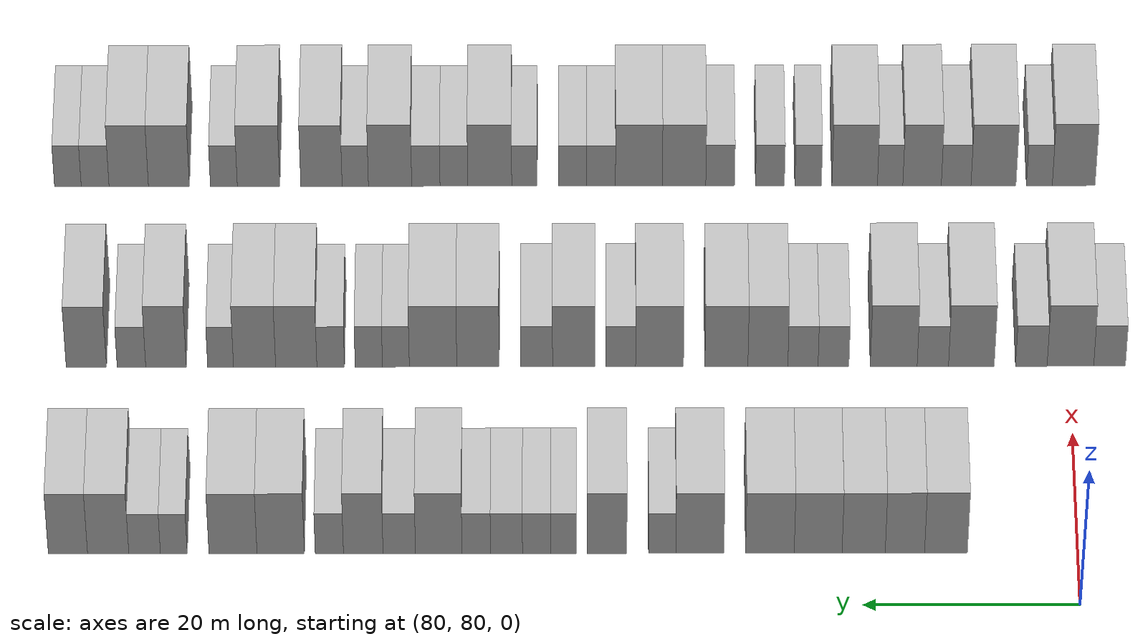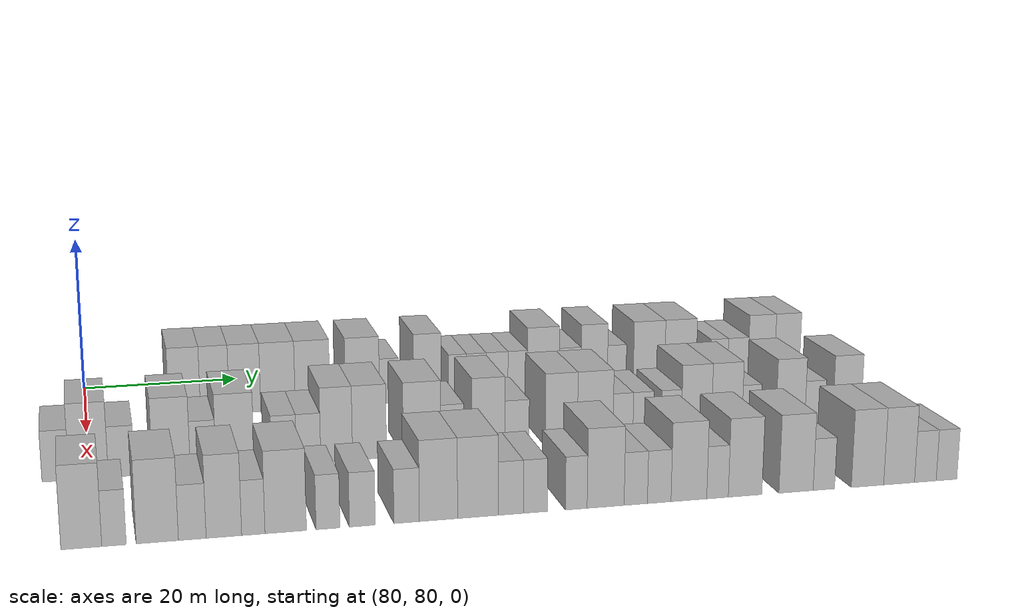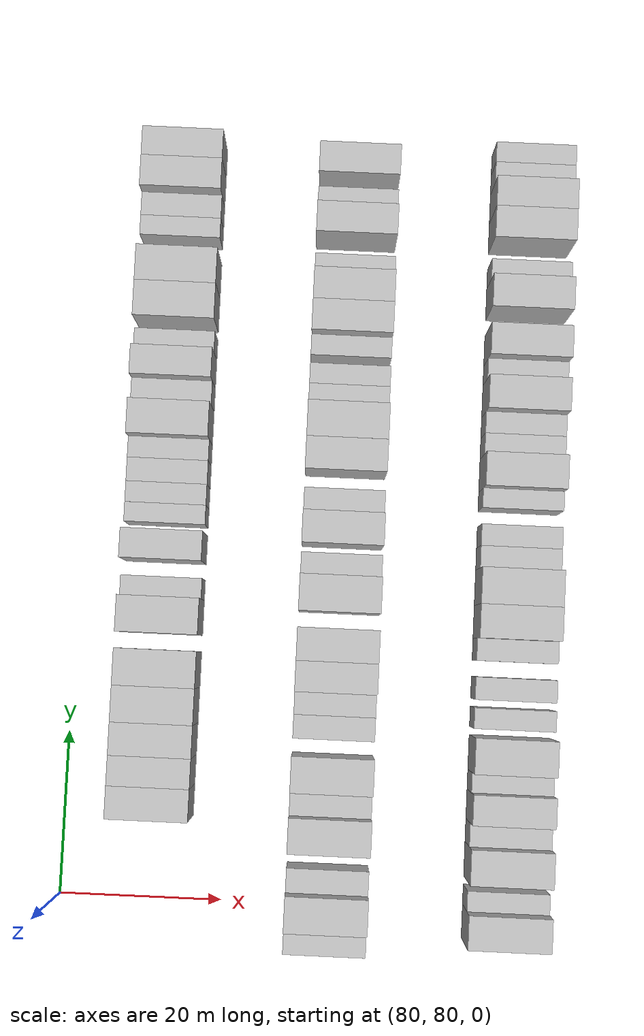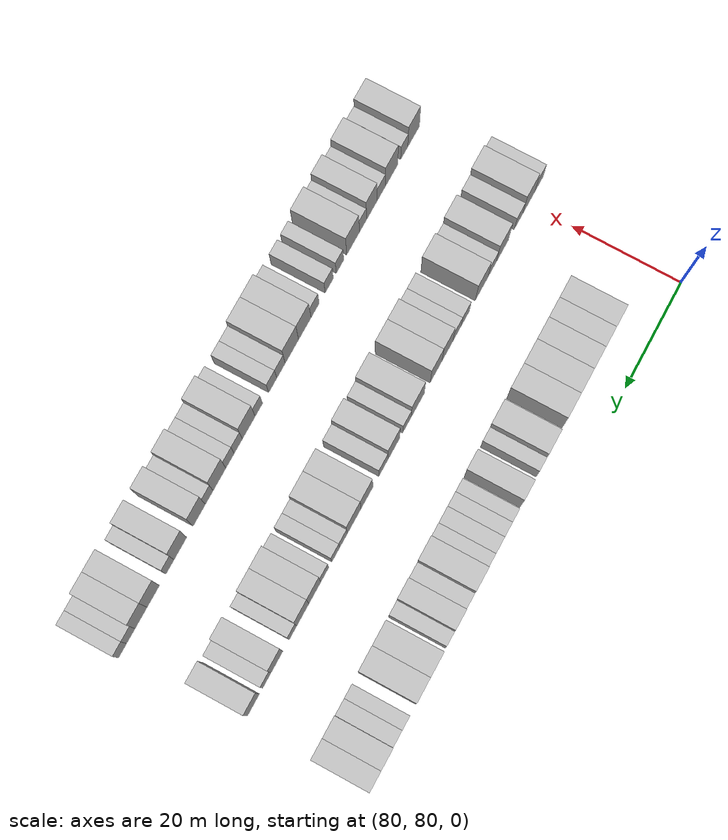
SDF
<sdf version="1.6">
 <world name="default">
  <model name="building_674">
   <static>1</static>
   <pose>91.0000 92.1928 0 0.000000 0.000000 0.000000</pose>
   <link name="link">
    <pose>0 0 4.50 0 0 0</pose>
    <collision name="collision"><geometry><box><size>10.0000 3.9496 9.0000</size></box></geometry></collision>
    <visual name="visual">
     <cast_shadows>0</cast_shadows>
     <geometry><box><size>10.0000 3.9496 9.0000</size></box></geometry>
     <material>
      <script>
       <uri>model://HANNAS_wall/materials/scripts</uri>
       <uri>model://HANNAS_wall/materials/textures</uri>
       <name>vrc/HANNAS_wall</name>
      </script>
     </material>
    </visual>
   </link>
  </model>
  <model name="building_675">
   <static>1</static>
   <pose>91.0000 95.9785 0 0.000000 0.000000 0.000000</pose>
   <link name="link">
    <pose>0 0 4.50 0 0 0</pose>
    <collision name="collision"><geometry><box><size>10.0000 3.6218 9.0000</size></box></geometry></collision>
    <visual name="visual">
     <cast_shadows>0</cast_shadows>
     <geometry><box><size>10.0000 3.6218 9.0000</size></box></geometry>
     <material>
      <script>
       <uri>model://HANNAS_wall/materials/scripts</uri>
       <uri>model://HANNAS_wall/materials/textures</uri>
       <name>vrc/HANNAS_wall</name>
      </script>
     </material>
    </visual>
   </link>
  </model>
  <model name="building_676">
   <static>1</static>
   <pose>91.0000 99.7775 0 0.000000 0.000000 0.000000</pose>
   <link name="link">
    <pose>0 0 4.50 0 0 0</pose>
    <collision name="collision"><geometry><box><size>10.0000 3.9763 9.0000</size></box></geometry></collision>
    <visual name="visual">
     <cast_shadows>0</cast_shadows>
     <geometry><box><size>10.0000 3.9763 9.0000</size></box></geometry>
     <material>
      <script>
       <uri>model://HANNAS_wall/materials/scripts</uri>
       <uri>model://HANNAS_wall/materials/textures</uri>
       <name>vrc/HANNAS_wall</name>
      </script>
     </material>
    </visual>
   </link>
  </model>
  <model name="building_677">
   <static>1</static>
   <pose>91.0000 103.9706 0 0.000000 0.000000 0.000000</pose>
   <link name="link">
    <pose>0 0 4.50 0 0 0</pose>
    <collision name="collision"><geometry><box><size>10.0000 4.4097 9.0000</size></box></geometry></collision>
    <visual name="visual">
     <cast_shadows>0</cast_shadows>
     <geometry><box><size>10.0000 4.4097 9.0000</size></box></geometry>
     <material>
      <script>
       <uri>model://HANNAS_wall/materials/scripts</uri>
       <uri>model://HANNAS_wall/materials/textures</uri>
       <name>vrc/HANNAS_wall</name>
      </script>
     </material>
    </visual>
   </link>
  </model>
  <model name="building_678">
   <static>1</static>
   <pose>91.0000 108.4121 0 0.000000 0.000000 0.000000</pose>
   <link name="link">
    <pose>0 0 4.50 0 0 0</pose>
    <collision name="collision"><geometry><box><size>10.0000 4.4733 9.0000</size></box></geometry></collision>
    <visual name="visual">
     <cast_shadows>0</cast_shadows>
     <geometry><box><size>10.0000 4.4733 9.0000</size></box></geometry>
     <material>
      <script>
       <uri>model://HANNAS_wall/materials/scripts</uri>
       <uri>model://HANNAS_wall/materials/textures</uri>
       <name>vrc/HANNAS_wall</name>
      </script>
     </material>
    </visual>
   </link>
  </model>
  <model name="building_679">
   <static>1</static>
   <pose>91.0000 114.8661 0 0.000000 0.000000 0.000000</pose>
   <link name="link">
    <pose>0 0 4.50 0 0 0</pose>
    <collision name="collision"><geometry><box><size>10.0000 4.4348 9.0000</size></box></geometry></collision>
    <visual name="visual">
     <cast_shadows>0</cast_shadows>
     <geometry><box><size>10.0000 4.4348 9.0000</size></box></geometry>
     <material>
      <script>
       <uri>model://HANNAS_wall/materials/scripts</uri>
       <uri>model://HANNAS_wall/materials/textures</uri>
       <name>vrc/HANNAS_wall</name>
      </script>
     </material>
    </visual>
   </link>
  </model>
  <model name="building_680">
   <static>1</static>
   <pose>91.0000 118.3376 0 0.000000 0.000000 0.000000</pose>
   <link name="link">
    <pose>0 0 3.00 0 0 0</pose>
    <collision name="collision"><geometry><box><size>10.0000 2.5080 6.0000</size></box></geometry></collision>
    <visual name="visual">
     <cast_shadows>0</cast_shadows>
     <geometry><box><size>10.0000 2.5080 6.0000</size></box></geometry>
     <material>
      <script>
       <uri>model://HANNAS_wall/materials/scripts</uri>
       <uri>model://HANNAS_wall/materials/textures</uri>
       <name>vrc/HANNAS_wall</name>
      </script>
     </material>
    </visual>
   </link>
  </model>
  <model name="building_681">
   <static>1</static>
   <pose>91.0000 123.4012 0 0.000000 0.000000 0.000000</pose>
   <link name="link">
    <pose>0 0 4.50 0 0 0</pose>
    <collision name="collision"><geometry><box><size>10.0000 3.6193 9.0000</size></box></geometry></collision>
    <visual name="visual">
     <cast_shadows>0</cast_shadows>
     <geometry><box><size>10.0000 3.6193 9.0000</size></box></geometry>
     <material>
      <script>
       <uri>model://HANNAS_wall/materials/scripts</uri>
       <uri>model://HANNAS_wall/materials/textures</uri>
       <name>vrc/HANNAS_wall</name>
      </script>
     </material>
    </visual>
   </link>
  </model>
  <model name="building_682">
   <static>1</static>
   <pose>91.0000 127.4136 0 0.000000 0.000000 0.000000</pose>
   <link name="link">
    <pose>0 0 3.00 0 0 0</pose>
    <collision name="collision"><geometry><box><size>10.0000 2.4055 6.0000</size></box></geometry></collision>
    <visual name="visual">
     <cast_shadows>0</cast_shadows>
     <geometry><box><size>10.0000 2.4055 6.0000</size></box></geometry>
     <material>
      <script>
       <uri>model://HANNAS_wall/materials/scripts</uri>
       <uri>model://HANNAS_wall/materials/textures</uri>
       <name>vrc/HANNAS_wall</name>
      </script>
     </material>
    </visual>
   </link>
  </model>
  <model name="building_683">
   <static>1</static>
   <pose>91.0000 129.9099 0 0.000000 0.000000 0.000000</pose>
   <link name="link">
    <pose>0 0 3.00 0 0 0</pose>
    <collision name="collision"><geometry><box><size>10.0000 2.5870 6.0000</size></box></geometry></collision>
    <visual name="visual">
     <cast_shadows>0</cast_shadows>
     <geometry><box><size>10.0000 2.5870 6.0000</size></box></geometry>
     <material>
      <script>
       <uri>model://HANNAS_wall/materials/scripts</uri>
       <uri>model://HANNAS_wall/materials/textures</uri>
       <name>vrc/HANNAS_wall</name>
      </script>
     </material>
    </visual>
   </link>
  </model>
  <model name="building_684">
   <static>1</static>
   <pose>91.0000 132.6697 0 0.000000 0.000000 0.000000</pose>
   <link name="link">
    <pose>0 0 3.00 0 0 0</pose>
    <collision name="collision"><geometry><box><size>10.0000 2.9327 6.0000</size></box></geometry></collision>
    <visual name="visual">
     <cast_shadows>0</cast_shadows>
     <geometry><box><size>10.0000 2.9327 6.0000</size></box></geometry>
     <material>
      <script>
       <uri>model://HANNAS_wall/materials/scripts</uri>
       <uri>model://HANNAS_wall/materials/textures</uri>
       <name>vrc/HANNAS_wall</name>
      </script>
     </material>
    </visual>
   </link>
  </model>
  <model name="building_685">
   <static>1</static>
   <pose>91.0000 135.4505 0 0.000000 0.000000 0.000000</pose>
   <link name="link">
    <pose>0 0 3.00 0 0 0</pose>
    <collision name="collision"><geometry><box><size>10.0000 2.6291 6.0000</size></box></geometry></collision>
    <visual name="visual">
     <cast_shadows>0</cast_shadows>
     <geometry><box><size>10.0000 2.6291 6.0000</size></box></geometry>
     <material>
      <script>
       <uri>model://HANNAS_wall/materials/scripts</uri>
       <uri>model://HANNAS_wall/materials/textures</uri>
       <name>vrc/HANNAS_wall</name>
      </script>
     </material>
    </visual>
   </link>
  </model>
  <model name="building_686">
   <static>1</static>
   <pose>91.0000 138.9093 0 0.000000 0.000000 0.000000</pose>
   <link name="link">
    <pose>0 0 4.50 0 0 0</pose>
    <collision name="collision"><geometry><box><size>10.0000 4.2885 9.0000</size></box></geometry></collision>
    <visual name="visual">
     <cast_shadows>0</cast_shadows>
     <geometry><box><size>10.0000 4.2885 9.0000</size></box></geometry>
     <material>
      <script>
       <uri>model://HANNAS_wall/materials/scripts</uri>
       <uri>model://HANNAS_wall/materials/textures</uri>
       <name>vrc/HANNAS_wall</name>
      </script>
     </material>
    </visual>
   </link>
  </model>
  <model name="building_687">
   <static>1</static>
   <pose>91.0000 142.5484 0 0.000000 0.000000 0.000000</pose>
   <link name="link">
    <pose>0 0 3.00 0 0 0</pose>
    <collision name="collision"><geometry><box><size>10.0000 2.9898 6.0000</size></box></geometry></collision>
    <visual name="visual">
     <cast_shadows>0</cast_shadows>
     <geometry><box><size>10.0000 2.9898 6.0000</size></box></geometry>
     <material>
      <script>
       <uri>model://HANNAS_wall/materials/scripts</uri>
       <uri>model://HANNAS_wall/materials/textures</uri>
       <name>vrc/HANNAS_wall</name>
      </script>
     </material>
    </visual>
   </link>
  </model>
  <model name="building_688">
   <static>1</static>
   <pose>91.0000 145.8674 0 0.000000 0.000000 0.000000</pose>
   <link name="link">
    <pose>0 0 4.50 0 0 0</pose>
    <collision name="collision"><geometry><box><size>10.0000 3.6482 9.0000</size></box></geometry></collision>
    <visual name="visual">
     <cast_shadows>0</cast_shadows>
     <geometry><box><size>10.0000 3.6482 9.0000</size></box></geometry>
     <material>
      <script>
       <uri>model://HANNAS_wall/materials/scripts</uri>
       <uri>model://HANNAS_wall/materials/textures</uri>
       <name>vrc/HANNAS_wall</name>
      </script>
     </material>
    </visual>
   </link>
  </model>
  <model name="building_689">
   <static>1</static>
   <pose>91.0000 148.9882 0 0.000000 0.000000 0.000000</pose>
   <link name="link">
    <pose>0 0 3.00 0 0 0</pose>
    <collision name="collision"><geometry><box><size>10.0000 2.5933 6.0000</size></box></geometry></collision>
    <visual name="visual">
     <cast_shadows>0</cast_shadows>
     <geometry><box><size>10.0000 2.5933 6.0000</size></box></geometry>
     <material>
      <script>
       <uri>model://HANNAS_wall/materials/scripts</uri>
       <uri>model://HANNAS_wall/materials/textures</uri>
       <name>vrc/HANNAS_wall</name>
      </script>
     </material>
    </visual>
   </link>
  </model>
  <model name="building_690">
   <static>1</static>
   <pose>91.0000 153.4699 0 0.000000 0.000000 0.000000</pose>
   <link name="link">
    <pose>0 0 4.50 0 0 0</pose>
    <collision name="collision"><geometry><box><size>10.0000 4.3702 9.0000</size></box></geometry></collision>
    <visual name="visual">
     <cast_shadows>0</cast_shadows>
     <geometry><box><size>10.0000 4.3702 9.0000</size></box></geometry>
     <material>
      <script>
       <uri>model://HANNAS_wall/materials/scripts</uri>
       <uri>model://HANNAS_wall/materials/textures</uri>
       <name>vrc/HANNAS_wall</name>
      </script>
     </material>
    </visual>
   </link>
  </model>
  <model name="building_691">
   <static>1</static>
   <pose>91.0000 157.8651 0 0.000000 0.000000 0.000000</pose>
   <link name="link">
    <pose>0 0 4.50 0 0 0</pose>
    <collision name="collision"><geometry><box><size>10.0000 4.4201 9.0000</size></box></geometry></collision>
    <visual name="visual">
     <cast_shadows>0</cast_shadows>
     <geometry><box><size>10.0000 4.4201 9.0000</size></box></geometry>
     <material>
      <script>
       <uri>model://HANNAS_wall/materials/scripts</uri>
       <uri>model://HANNAS_wall/materials/textures</uri>
       <name>vrc/HANNAS_wall</name>
      </script>
     </material>
    </visual>
   </link>
  </model>
  <model name="building_692">
   <static>1</static>
   <pose>91.0000 163.3132 0 0.000000 0.000000 0.000000</pose>
   <link name="link">
    <pose>0 0 3.00 0 0 0</pose>
    <collision name="collision"><geometry><box><size>10.0000 2.4763 6.0000</size></box></geometry></collision>
    <visual name="visual">
     <cast_shadows>0</cast_shadows>
     <geometry><box><size>10.0000 2.4763 6.0000</size></box></geometry>
     <material>
      <script>
       <uri>model://HANNAS_wall/materials/scripts</uri>
       <uri>model://HANNAS_wall/materials/textures</uri>
       <name>vrc/HANNAS_wall</name>
      </script>
     </material>
    </visual>
   </link>
  </model>
  <model name="building_693">
   <static>1</static>
   <pose>91.0000 166.0051 0 0.000000 0.000000 0.000000</pose>
   <link name="link">
    <pose>0 0 3.00 0 0 0</pose>
    <collision name="collision"><geometry><box><size>10.0000 2.9075 6.0000</size></box></geometry></collision>
    <visual name="visual">
     <cast_shadows>0</cast_shadows>
     <geometry><box><size>10.0000 2.9075 6.0000</size></box></geometry>
     <material>
      <script>
       <uri>model://HANNAS_wall/materials/scripts</uri>
       <uri>model://HANNAS_wall/materials/textures</uri>
       <name>vrc/HANNAS_wall</name>
      </script>
     </material>
    </visual>
   </link>
  </model>
  <model name="building_694">
   <static>1</static>
   <pose>91.0000 169.3605 0 0.000000 0.000000 0.000000</pose>
   <link name="link">
    <pose>0 0 4.50 0 0 0</pose>
    <collision name="collision"><geometry><box><size>10.0000 3.8034 9.0000</size></box></geometry></collision>
    <visual name="visual">
     <cast_shadows>0</cast_shadows>
     <geometry><box><size>10.0000 3.8034 9.0000</size></box></geometry>
     <material>
      <script>
       <uri>model://HANNAS_wall/materials/scripts</uri>
       <uri>model://HANNAS_wall/materials/textures</uri>
       <name>vrc/HANNAS_wall</name>
      </script>
     </material>
    </visual>
   </link>
  </model>
  <model name="building_695">
   <static>1</static>
   <pose>91.0000 173.0650 0 0.000000 0.000000 0.000000</pose>
   <link name="link">
    <pose>0 0 4.50 0 0 0</pose>
    <collision name="collision"><geometry><box><size>10.0000 3.6055 9.0000</size></box></geometry></collision>
    <visual name="visual">
     <cast_shadows>0</cast_shadows>
     <geometry><box><size>10.0000 3.6055 9.0000</size></box></geometry>
     <material>
      <script>
       <uri>model://HANNAS_wall/materials/scripts</uri>
       <uri>model://HANNAS_wall/materials/textures</uri>
       <name>vrc/HANNAS_wall</name>
      </script>
     </material>
    </visual>
   </link>
  </model>
  <model name="building_856">
   <static>1</static>
   <pose>113.0000 76.2851 0 0.000000 0.000000 0.000000</pose>
   <link name="link">
    <pose>0 0 3.00 0 0 0</pose>
    <collision name="collision"><geometry><box><size>10.0000 2.9721 6.0000</size></box></geometry></collision>
    <visual name="visual">
     <cast_shadows>0</cast_shadows>
     <geometry><box><size>10.0000 2.9721 6.0000</size></box></geometry>
     <material>
      <script>
       <uri>model://HANNAS_wall/materials/scripts</uri>
       <uri>model://HANNAS_wall/materials/textures</uri>
       <name>vrc/HANNAS_wall</name>
      </script>
     </material>
    </visual>
   </link>
  </model>
  <model name="building_857">
   <static>1</static>
   <pose>113.0000 79.9531 0 0.000000 0.000000 0.000000</pose>
   <link name="link">
    <pose>0 0 4.50 0 0 0</pose>
    <collision name="collision"><geometry><box><size>10.0000 4.3640 9.0000</size></box></geometry></collision>
    <visual name="visual">
     <cast_shadows>0</cast_shadows>
     <geometry><box><size>10.0000 4.3640 9.0000</size></box></geometry>
     <material>
      <script>
       <uri>model://HANNAS_wall/materials/scripts</uri>
       <uri>model://HANNAS_wall/materials/textures</uri>
       <name>vrc/HANNAS_wall</name>
      </script>
     </material>
    </visual>
   </link>
  </model>
  <model name="building_858">
   <static>1</static>
   <pose>113.0000 83.6098 0 0.000000 0.000000 0.000000</pose>
   <link name="link">
    <pose>0 0 3.00 0 0 0</pose>
    <collision name="collision"><geometry><box><size>10.0000 2.9493 6.0000</size></box></geometry></collision>
    <visual name="visual">
     <cast_shadows>0</cast_shadows>
     <geometry><box><size>10.0000 2.9493 6.0000</size></box></geometry>
     <material>
      <script>
       <uri>model://HANNAS_wall/materials/scripts</uri>
       <uri>model://HANNAS_wall/materials/textures</uri>
       <name>vrc/HANNAS_wall</name>
      </script>
     </material>
    </visual>
   </link>
  </model>
  <model name="building_859">
   <static>1</static>
   <pose>113.0000 89.2267 0 0.000000 0.000000 0.000000</pose>
   <link name="link">
    <pose>0 0 4.50 0 0 0</pose>
    <collision name="collision"><geometry><box><size>10.0000 4.2845 9.0000</size></box></geometry></collision>
    <visual name="visual">
     <cast_shadows>0</cast_shadows>
     <geometry><box><size>10.0000 4.2845 9.0000</size></box></geometry>
     <material>
      <script>
       <uri>model://HANNAS_wall/materials/scripts</uri>
       <uri>model://HANNAS_wall/materials/textures</uri>
       <name>vrc/HANNAS_wall</name>
      </script>
     </material>
    </visual>
   </link>
  </model>
  <model name="building_860">
   <static>1</static>
   <pose>113.0000 92.8372 0 0.000000 0.000000 0.000000</pose>
   <link name="link">
    <pose>0 0 3.00 0 0 0</pose>
    <collision name="collision"><geometry><box><size>10.0000 2.9366 6.0000</size></box></geometry></collision>
    <visual name="visual">
     <cast_shadows>0</cast_shadows>
     <geometry><box><size>10.0000 2.9366 6.0000</size></box></geometry>
     <material>
      <script>
       <uri>model://HANNAS_wall/materials/scripts</uri>
       <uri>model://HANNAS_wall/materials/textures</uri>
       <name>vrc/HANNAS_wall</name>
      </script>
     </material>
    </visual>
   </link>
  </model>
  <model name="building_861">
   <static>1</static>
   <pose>113.0000 96.5004 0 0.000000 0.000000 0.000000</pose>
   <link name="link">
    <pose>0 0 4.50 0 0 0</pose>
    <collision name="collision"><geometry><box><size>10.0000 4.3898 9.0000</size></box></geometry></collision>
    <visual name="visual">
     <cast_shadows>0</cast_shadows>
     <geometry><box><size>10.0000 4.3898 9.0000</size></box></geometry>
     <material>
      <script>
       <uri>model://HANNAS_wall/materials/scripts</uri>
       <uri>model://HANNAS_wall/materials/textures</uri>
       <name>vrc/HANNAS_wall</name>
      </script>
     </material>
    </visual>
   </link>
  </model>
  <model name="building_862">
   <static>1</static>
   <pose>113.0000 102.1431 0 0.000000 0.000000 0.000000</pose>
   <link name="link">
    <pose>0 0 3.00 0 0 0</pose>
    <collision name="collision"><geometry><box><size>10.0000 2.8955 6.0000</size></box></geometry></collision>
    <visual name="visual">
     <cast_shadows>0</cast_shadows>
     <geometry><box><size>10.0000 2.8955 6.0000</size></box></geometry>
     <material>
      <script>
       <uri>model://HANNAS_wall/materials/scripts</uri>
       <uri>model://HANNAS_wall/materials/textures</uri>
       <name>vrc/HANNAS_wall</name>
      </script>
     </material>
    </visual>
   </link>
  </model>
  <model name="building_863">
   <static>1</static>
   <pose>113.0000 105.0042 0 0.000000 0.000000 0.000000</pose>
   <link name="link">
    <pose>0 0 3.00 0 0 0</pose>
    <collision name="collision"><geometry><box><size>10.0000 2.8268 6.0000</size></box></geometry></collision>
    <visual name="visual">
     <cast_shadows>0</cast_shadows>
     <geometry><box><size>10.0000 2.8268 6.0000</size></box></geometry>
     <material>
      <script>
       <uri>model://HANNAS_wall/materials/scripts</uri>
       <uri>model://HANNAS_wall/materials/textures</uri>
       <name>vrc/HANNAS_wall</name>
      </script>
     </material>
    </visual>
   </link>
  </model>
  <model name="building_864">
   <static>1</static>
   <pose>113.0000 108.2889 0 0.000000 0.000000 0.000000</pose>
   <link name="link">
    <pose>0 0 4.50 0 0 0</pose>
    <collision name="collision"><geometry><box><size>10.0000 3.7425 9.0000</size></box></geometry></collision>
    <visual name="visual">
     <cast_shadows>0</cast_shadows>
     <geometry><box><size>10.0000 3.7425 9.0000</size></box></geometry>
     <material>
      <script>
       <uri>model://HANNAS_wall/materials/scripts</uri>
       <uri>model://HANNAS_wall/materials/textures</uri>
       <name>vrc/HANNAS_wall</name>
      </script>
     </material>
    </visual>
   </link>
  </model>
  <model name="building_865">
   <static>1</static>
   <pose>113.0000 112.1743 0 0.000000 0.000000 0.000000</pose>
   <link name="link">
    <pose>0 0 4.50 0 0 0</pose>
    <collision name="collision"><geometry><box><size>10.0000 4.0282 9.0000</size></box></geometry></collision>
    <visual name="visual">
     <cast_shadows>0</cast_shadows>
     <geometry><box><size>10.0000 4.0282 9.0000</size></box></geometry>
     <material>
      <script>
       <uri>model://HANNAS_wall/materials/scripts</uri>
       <uri>model://HANNAS_wall/materials/textures</uri>
       <name>vrc/HANNAS_wall</name>
      </script>
     </material>
    </visual>
   </link>
  </model>
  <model name="building_866">
   <static>1</static>
   <pose>113.0000 118.4320 0 0.000000 0.000000 0.000000</pose>
   <link name="link">
    <pose>0 0 4.50 0 0 0</pose>
    <collision name="collision"><geometry><box><size>10.0000 4.4872 9.0000</size></box></geometry></collision>
    <visual name="visual">
     <cast_shadows>0</cast_shadows>
     <geometry><box><size>10.0000 4.4872 9.0000</size></box></geometry>
     <material>
      <script>
       <uri>model://HANNAS_wall/materials/scripts</uri>
       <uri>model://HANNAS_wall/materials/textures</uri>
       <name>vrc/HANNAS_wall</name>
      </script>
     </material>
    </visual>
   </link>
  </model>
  <model name="building_867">
   <static>1</static>
   <pose>113.0000 122.0655 0 0.000000 0.000000 0.000000</pose>
   <link name="link">
    <pose>0 0 3.00 0 0 0</pose>
    <collision name="collision"><geometry><box><size>10.0000 2.7799 6.0000</size></box></geometry></collision>
    <visual name="visual">
     <cast_shadows>0</cast_shadows>
     <geometry><box><size>10.0000 2.7799 6.0000</size></box></geometry>
     <material>
      <script>
       <uri>model://HANNAS_wall/materials/scripts</uri>
       <uri>model://HANNAS_wall/materials/textures</uri>
       <name>vrc/HANNAS_wall</name>
      </script>
     </material>
    </visual>
   </link>
  </model>
  <model name="building_868">
   <static>1</static>
   <pose>113.0000 126.4538 0 0.000000 0.000000 0.000000</pose>
   <link name="link">
    <pose>0 0 4.50 0 0 0</pose>
    <collision name="collision"><geometry><box><size>10.0000 3.9967 9.0000</size></box></geometry></collision>
    <visual name="visual">
     <cast_shadows>0</cast_shadows>
     <geometry><box><size>10.0000 3.9967 9.0000</size></box></geometry>
     <material>
      <script>
       <uri>model://HANNAS_wall/materials/scripts</uri>
       <uri>model://HANNAS_wall/materials/textures</uri>
       <name>vrc/HANNAS_wall</name>
      </script>
     </material>
    </visual>
   </link>
  </model>
  <model name="building_869">
   <static>1</static>
   <pose>113.0000 129.9444 0 0.000000 0.000000 0.000000</pose>
   <link name="link">
    <pose>0 0 3.00 0 0 0</pose>
    <collision name="collision"><geometry><box><size>10.0000 2.9844 6.0000</size></box></geometry></collision>
    <visual name="visual">
     <cast_shadows>0</cast_shadows>
     <geometry><box><size>10.0000 2.9844 6.0000</size></box></geometry>
     <material>
      <script>
       <uri>model://HANNAS_wall/materials/scripts</uri>
       <uri>model://HANNAS_wall/materials/textures</uri>
       <name>vrc/HANNAS_wall</name>
      </script>
     </material>
    </visual>
   </link>
  </model>
  <model name="building_870">
   <static>1</static>
   <pose>113.0000 135.4262 0 0.000000 0.000000 0.000000</pose>
   <link name="link">
    <pose>0 0 4.50 0 0 0</pose>
    <collision name="collision"><geometry><box><size>10.0000 3.9793 9.0000</size></box></geometry></collision>
    <visual name="visual">
     <cast_shadows>0</cast_shadows>
     <geometry><box><size>10.0000 3.9793 9.0000</size></box></geometry>
     <material>
      <script>
       <uri>model://HANNAS_wall/materials/scripts</uri>
       <uri>model://HANNAS_wall/materials/textures</uri>
       <name>vrc/HANNAS_wall</name>
      </script>
     </material>
    </visual>
   </link>
  </model>
  <model name="building_871">
   <static>1</static>
   <pose>113.0000 139.6390 0 0.000000 0.000000 0.000000</pose>
   <link name="link">
    <pose>0 0 4.50 0 0 0</pose>
    <collision name="collision"><geometry><box><size>10.0000 4.4461 9.0000</size></box></geometry></collision>
    <visual name="visual">
     <cast_shadows>0</cast_shadows>
     <geometry><box><size>10.0000 4.4461 9.0000</size></box></geometry>
     <material>
      <script>
       <uri>model://HANNAS_wall/materials/scripts</uri>
       <uri>model://HANNAS_wall/materials/textures</uri>
       <name>vrc/HANNAS_wall</name>
      </script>
     </material>
    </visual>
   </link>
  </model>
  <model name="building_872">
   <static>1</static>
   <pose>113.0000 143.1197 0 0.000000 0.000000 0.000000</pose>
   <link name="link">
    <pose>0 0 3.00 0 0 0</pose>
    <collision name="collision"><geometry><box><size>10.0000 2.5154 6.0000</size></box></geometry></collision>
    <visual name="visual">
     <cast_shadows>0</cast_shadows>
     <geometry><box><size>10.0000 2.5154 6.0000</size></box></geometry>
     <material>
      <script>
       <uri>model://HANNAS_wall/materials/scripts</uri>
       <uri>model://HANNAS_wall/materials/textures</uri>
       <name>vrc/HANNAS_wall</name>
      </script>
     </material>
    </visual>
   </link>
  </model>
  <model name="building_873">
   <static>1</static>
   <pose>113.0000 145.6536 0 0.000000 0.000000 0.000000</pose>
   <link name="link">
    <pose>0 0 3.00 0 0 0</pose>
    <collision name="collision"><geometry><box><size>10.0000 2.5525 6.0000</size></box></geometry></collision>
    <visual name="visual">
     <cast_shadows>0</cast_shadows>
     <geometry><box><size>10.0000 2.5525 6.0000</size></box></geometry>
     <material>
      <script>
       <uri>model://HANNAS_wall/materials/scripts</uri>
       <uri>model://HANNAS_wall/materials/textures</uri>
       <name>vrc/HANNAS_wall</name>
      </script>
     </material>
    </visual>
   </link>
  </model>
  <model name="building_874">
   <static>1</static>
   <pose>113.0000 149.2254 0 0.000000 0.000000 0.000000</pose>
   <link name="link">
    <pose>0 0 3.00 0 0 0</pose>
    <collision name="collision"><geometry><box><size>10.0000 2.5911 6.0000</size></box></geometry></collision>
    <visual name="visual">
     <cast_shadows>0</cast_shadows>
     <geometry><box><size>10.0000 2.5911 6.0000</size></box></geometry>
     <material>
      <script>
       <uri>model://HANNAS_wall/materials/scripts</uri>
       <uri>model://HANNAS_wall/materials/textures</uri>
       <name>vrc/HANNAS_wall</name>
      </script>
     </material>
    </visual>
   </link>
  </model>
  <model name="building_875">
   <static>1</static>
   <pose>113.0000 152.4525 0 0.000000 0.000000 0.000000</pose>
   <link name="link">
    <pose>0 0 4.50 0 0 0</pose>
    <collision name="collision"><geometry><box><size>10.0000 3.8631 9.0000</size></box></geometry></collision>
    <visual name="visual">
     <cast_shadows>0</cast_shadows>
     <geometry><box><size>10.0000 3.8631 9.0000</size></box></geometry>
     <material>
      <script>
       <uri>model://HANNAS_wall/materials/scripts</uri>
       <uri>model://HANNAS_wall/materials/textures</uri>
       <name>vrc/HANNAS_wall</name>
      </script>
     </material>
    </visual>
   </link>
  </model>
  <model name="building_876">
   <static>1</static>
   <pose>113.0000 156.3574 0 0.000000 0.000000 0.000000</pose>
   <link name="link">
    <pose>0 0 4.50 0 0 0</pose>
    <collision name="collision"><geometry><box><size>10.0000 3.9468 9.0000</size></box></geometry></collision>
    <visual name="visual">
     <cast_shadows>0</cast_shadows>
     <geometry><box><size>10.0000 3.9468 9.0000</size></box></geometry>
     <material>
      <script>
       <uri>model://HANNAS_wall/materials/scripts</uri>
       <uri>model://HANNAS_wall/materials/textures</uri>
       <name>vrc/HANNAS_wall</name>
      </script>
     </material>
    </visual>
   </link>
  </model>
  <model name="building_877">
   <static>1</static>
   <pose>113.0000 159.5371 0 0.000000 0.000000 0.000000</pose>
   <link name="link">
    <pose>0 0 3.00 0 0 0</pose>
    <collision name="collision"><geometry><box><size>10.0000 2.4127 6.0000</size></box></geometry></collision>
    <visual name="visual">
     <cast_shadows>0</cast_shadows>
     <geometry><box><size>10.0000 2.4127 6.0000</size></box></geometry>
     <material>
      <script>
       <uri>model://HANNAS_wall/materials/scripts</uri>
       <uri>model://HANNAS_wall/materials/textures</uri>
       <name>vrc/HANNAS_wall</name>
      </script>
     </material>
    </visual>
   </link>
  </model>
  <model name="building_878">
   <static>1</static>
   <pose>113.0000 164.6471 0 0.000000 0.000000 0.000000</pose>
   <link name="link">
    <pose>0 0 4.50 0 0 0</pose>
    <collision name="collision"><geometry><box><size>10.0000 3.8073 9.0000</size></box></geometry></collision>
    <visual name="visual">
     <cast_shadows>0</cast_shadows>
     <geometry><box><size>10.0000 3.8073 9.0000</size></box></geometry>
     <material>
      <script>
       <uri>model://HANNAS_wall/materials/scripts</uri>
       <uri>model://HANNAS_wall/materials/textures</uri>
       <name>vrc/HANNAS_wall</name>
      </script>
     </material>
    </visual>
   </link>
  </model>
  <model name="building_879">
   <static>1</static>
   <pose>113.0000 167.8864 0 0.000000 0.000000 0.000000</pose>
   <link name="link">
    <pose>0 0 3.00 0 0 0</pose>
    <collision name="collision"><geometry><box><size>10.0000 2.6713 6.0000</size></box></geometry></collision>
    <visual name="visual">
     <cast_shadows>0</cast_shadows>
     <geometry><box><size>10.0000 2.6713 6.0000</size></box></geometry>
     <material>
      <script>
       <uri>model://HANNAS_wall/materials/scripts</uri>
       <uri>model://HANNAS_wall/materials/textures</uri>
       <name>vrc/HANNAS_wall</name>
      </script>
     </material>
    </visual>
   </link>
  </model>
  <model name="building_880">
   <static>1</static>
   <pose>113.0000 172.1074 0 0.000000 0.000000 0.000000</pose>
   <link name="link">
    <pose>0 0 4.50 0 0 0</pose>
    <collision name="collision"><geometry><box><size>10.0000 3.7707 9.0000</size></box></geometry></collision>
    <visual name="visual">
     <cast_shadows>0</cast_shadows>
     <geometry><box><size>10.0000 3.7707 9.0000</size></box></geometry>
     <material>
      <script>
       <uri>model://HANNAS_wall/materials/scripts</uri>
       <uri>model://HANNAS_wall/materials/textures</uri>
       <name>vrc/HANNAS_wall</name>
      </script>
     </material>
    </visual>
   </link>
  </model>
  <model name="building_1043">
   <static>1</static>
   <pose>135.0000 78.8590 0 0.000000 0.000000 0.000000</pose>
   <link name="link">
    <pose>0 0 4.50 0 0 0</pose>
    <collision name="collision"><geometry><box><size>10.0000 4.0771 9.0000</size></box></geometry></collision>
    <visual name="visual">
     <cast_shadows>0</cast_shadows>
     <geometry><box><size>10.0000 4.0771 9.0000</size></box></geometry>
     <material>
      <script>
       <uri>model://HANNAS_wall/materials/scripts</uri>
       <uri>model://HANNAS_wall/materials/textures</uri>
       <name>vrc/HANNAS_wall</name>
      </script>
     </material>
    </visual>
   </link>
  </model>
  <model name="building_1044">
   <static>1</static>
   <pose>135.0000 82.1265 0 0.000000 0.000000 0.000000</pose>
   <link name="link">
    <pose>0 0 3.00 0 0 0</pose>
    <collision name="collision"><geometry><box><size>10.0000 2.4578 6.0000</size></box></geometry></collision>
    <visual name="visual">
     <cast_shadows>0</cast_shadows>
     <geometry><box><size>10.0000 2.4578 6.0000</size></box></geometry>
     <material>
      <script>
       <uri>model://HANNAS_wall/materials/scripts</uri>
       <uri>model://HANNAS_wall/materials/textures</uri>
       <name>vrc/HANNAS_wall</name>
      </script>
     </material>
    </visual>
   </link>
  </model>
  <model name="building_1045">
   <static>1</static>
   <pose>135.0000 86.4966 0 0.000000 0.000000 0.000000</pose>
   <link name="link">
    <pose>0 0 4.50 0 0 0</pose>
    <collision name="collision"><geometry><box><size>10.0000 4.2824 9.0000</size></box></geometry></collision>
    <visual name="visual">
     <cast_shadows>0</cast_shadows>
     <geometry><box><size>10.0000 4.2824 9.0000</size></box></geometry>
     <material>
      <script>
       <uri>model://HANNAS_wall/materials/scripts</uri>
       <uri>model://HANNAS_wall/materials/textures</uri>
       <name>vrc/HANNAS_wall</name>
      </script>
     </material>
    </visual>
   </link>
  </model>
  <model name="building_1046">
   <static>1</static>
   <pose>135.0000 90.0521 0 0.000000 0.000000 0.000000</pose>
   <link name="link">
    <pose>0 0 3.00 0 0 0</pose>
    <collision name="collision"><geometry><box><size>10.0000 2.8286 6.0000</size></box></geometry></collision>
    <visual name="visual">
     <cast_shadows>0</cast_shadows>
     <geometry><box><size>10.0000 2.8286 6.0000</size></box></geometry>
     <material>
      <script>
       <uri>model://HANNAS_wall/materials/scripts</uri>
       <uri>model://HANNAS_wall/materials/textures</uri>
       <name>vrc/HANNAS_wall</name>
      </script>
     </material>
    </visual>
   </link>
  </model>
  <model name="building_1047">
   <static>1</static>
   <pose>135.0000 93.2973 0 0.000000 0.000000 0.000000</pose>
   <link name="link">
    <pose>0 0 4.50 0 0 0</pose>
    <collision name="collision"><geometry><box><size>10.0000 3.6619 9.0000</size></box></geometry></collision>
    <visual name="visual">
     <cast_shadows>0</cast_shadows>
     <geometry><box><size>10.0000 3.6619 9.0000</size></box></geometry>
     <material>
      <script>
       <uri>model://HANNAS_wall/materials/scripts</uri>
       <uri>model://HANNAS_wall/materials/textures</uri>
       <name>vrc/HANNAS_wall</name>
      </script>
     </material>
    </visual>
   </link>
  </model>
  <model name="building_1048">
   <static>1</static>
   <pose>135.0000 96.3379 0 0.000000 0.000000 0.000000</pose>
   <link name="link">
    <pose>0 0 3.00 0 0 0</pose>
    <collision name="collision"><geometry><box><size>10.0000 2.4193 6.0000</size></box></geometry></collision>
    <visual name="visual">
     <cast_shadows>0</cast_shadows>
     <geometry><box><size>10.0000 2.4193 6.0000</size></box></geometry>
     <material>
      <script>
       <uri>model://HANNAS_wall/materials/scripts</uri>
       <uri>model://HANNAS_wall/materials/textures</uri>
       <name>vrc/HANNAS_wall</name>
      </script>
     </material>
    </visual>
   </link>
  </model>
  <model name="building_1049">
   <static>1</static>
   <pose>135.0000 99.7146 0 0.000000 0.000000 0.000000</pose>
   <link name="link">
    <pose>0 0 4.50 0 0 0</pose>
    <collision name="collision"><geometry><box><size>10.0000 4.3340 9.0000</size></box></geometry></collision>
    <visual name="visual">
     <cast_shadows>0</cast_shadows>
     <geometry><box><size>10.0000 4.3340 9.0000</size></box></geometry>
     <material>
      <script>
       <uri>model://HANNAS_wall/materials/scripts</uri>
       <uri>model://HANNAS_wall/materials/textures</uri>
       <name>vrc/HANNAS_wall</name>
      </script>
     </material>
    </visual>
   </link>
  </model>
  <model name="building_1050">
   <static>1</static>
   <pose>135.0000 104.1437 0 0.000000 0.000000 0.000000</pose>
   <link name="link">
    <pose>0 0 3.00 0 0 0</pose>
    <collision name="collision"><geometry><box><size>10.0000 2.5241 6.0000</size></box></geometry></collision>
    <visual name="visual">
     <cast_shadows>0</cast_shadows>
     <geometry><box><size>10.0000 2.5241 6.0000</size></box></geometry>
     <material>
      <script>
       <uri>model://HANNAS_wall/materials/scripts</uri>
       <uri>model://HANNAS_wall/materials/textures</uri>
       <name>vrc/HANNAS_wall</name>
      </script>
     </material>
    </visual>
   </link>
  </model>
  <model name="building_1051">
   <static>1</static>
   <pose>135.0000 107.7791 0 0.000000 0.000000 0.000000</pose>
   <link name="link">
    <pose>0 0 3.00 0 0 0</pose>
    <collision name="collision"><geometry><box><size>10.0000 2.7467 6.0000</size></box></geometry></collision>
    <visual name="visual">
     <cast_shadows>0</cast_shadows>
     <geometry><box><size>10.0000 2.7467 6.0000</size></box></geometry>
     <material>
      <script>
       <uri>model://HANNAS_wall/materials/scripts</uri>
       <uri>model://HANNAS_wall/materials/textures</uri>
       <name>vrc/HANNAS_wall</name>
      </script>
     </material>
    </visual>
   </link>
  </model>
  <model name="building_1052">
   <static>1</static>
   <pose>135.0000 112.5208 0 0.000000 0.000000 0.000000</pose>
   <link name="link">
    <pose>0 0 3.00 0 0 0</pose>
    <collision name="collision"><geometry><box><size>10.0000 2.7367 6.0000</size></box></geometry></collision>
    <visual name="visual">
     <cast_shadows>0</cast_shadows>
     <geometry><box><size>10.0000 2.7367 6.0000</size></box></geometry>
     <material>
      <script>
       <uri>model://HANNAS_wall/materials/scripts</uri>
       <uri>model://HANNAS_wall/materials/textures</uri>
       <name>vrc/HANNAS_wall</name>
      </script>
     </material>
    </visual>
   </link>
  </model>
  <model name="building_1053">
   <static>1</static>
   <pose>135.0000 115.9587 0 0.000000 0.000000 0.000000</pose>
   <link name="link">
    <pose>0 0 4.50 0 0 0</pose>
    <collision name="collision"><geometry><box><size>10.0000 4.1392 9.0000</size></box></geometry></collision>
    <visual name="visual">
     <cast_shadows>0</cast_shadows>
     <geometry><box><size>10.0000 4.1392 9.0000</size></box></geometry>
     <material>
      <script>
       <uri>model://HANNAS_wall/materials/scripts</uri>
       <uri>model://HANNAS_wall/materials/textures</uri>
       <name>vrc/HANNAS_wall</name>
      </script>
     </material>
    </visual>
   </link>
  </model>
  <model name="building_1054">
   <static>1</static>
   <pose>135.0000 120.2565 0 0.000000 0.000000 0.000000</pose>
   <link name="link">
    <pose>0 0 4.50 0 0 0</pose>
    <collision name="collision"><geometry><box><size>10.0000 4.4564 9.0000</size></box></geometry></collision>
    <visual name="visual">
     <cast_shadows>0</cast_shadows>
     <geometry><box><size>10.0000 4.4564 9.0000</size></box></geometry>
     <material>
      <script>
       <uri>model://HANNAS_wall/materials/scripts</uri>
       <uri>model://HANNAS_wall/materials/textures</uri>
       <name>vrc/HANNAS_wall</name>
      </script>
     </material>
    </visual>
   </link>
  </model>
  <model name="building_1055">
   <static>1</static>
   <pose>135.0000 123.8692 0 0.000000 0.000000 0.000000</pose>
   <link name="link">
    <pose>0 0 3.00 0 0 0</pose>
    <collision name="collision"><geometry><box><size>10.0000 2.7689 6.0000</size></box></geometry></collision>
    <visual name="visual">
     <cast_shadows>0</cast_shadows>
     <geometry><box><size>10.0000 2.7689 6.0000</size></box></geometry>
     <material>
      <script>
       <uri>model://HANNAS_wall/materials/scripts</uri>
       <uri>model://HANNAS_wall/materials/textures</uri>
       <name>vrc/HANNAS_wall</name>
      </script>
     </material>
    </visual>
   </link>
  </model>
  <model name="building_1056">
   <static>1</static>
   <pose>135.0000 126.5865 0 0.000000 0.000000 0.000000</pose>
   <link name="link">
    <pose>0 0 3.00 0 0 0</pose>
    <collision name="collision"><geometry><box><size>10.0000 2.6658 6.0000</size></box></geometry></collision>
    <visual name="visual">
     <cast_shadows>0</cast_shadows>
     <geometry><box><size>10.0000 2.6658 6.0000</size></box></geometry>
     <material>
      <script>
       <uri>model://HANNAS_wall/materials/scripts</uri>
       <uri>model://HANNAS_wall/materials/textures</uri>
       <name>vrc/HANNAS_wall</name>
      </script>
     </material>
    </visual>
   </link>
  </model>
  <model name="building_1057">
   <static>1</static>
   <pose>135.0000 131.1388 0 0.000000 0.000000 0.000000</pose>
   <link name="link">
    <pose>0 0 3.00 0 0 0</pose>
    <collision name="collision"><geometry><box><size>10.0000 2.4388 6.0000</size></box></geometry></collision>
    <visual name="visual">
     <cast_shadows>0</cast_shadows>
     <geometry><box><size>10.0000 2.4388 6.0000</size></box></geometry>
     <material>
      <script>
       <uri>model://HANNAS_wall/materials/scripts</uri>
       <uri>model://HANNAS_wall/materials/textures</uri>
       <name>vrc/HANNAS_wall</name>
      </script>
     </material>
    </visual>
   </link>
  </model>
  <model name="building_1058">
   <static>1</static>
   <pose>135.0000 134.4452 0 0.000000 0.000000 0.000000</pose>
   <link name="link">
    <pose>0 0 4.50 0 0 0</pose>
    <collision name="collision"><geometry><box><size>10.0000 4.1739 9.0000</size></box></geometry></collision>
    <visual name="visual">
     <cast_shadows>0</cast_shadows>
     <geometry><box><size>10.0000 4.1739 9.0000</size></box></geometry>
     <material>
      <script>
       <uri>model://HANNAS_wall/materials/scripts</uri>
       <uri>model://HANNAS_wall/materials/textures</uri>
       <name>vrc/HANNAS_wall</name>
      </script>
     </material>
    </visual>
   </link>
  </model>
  <model name="building_1059">
   <static>1</static>
   <pose>135.0000 137.8581 0 0.000000 0.000000 0.000000</pose>
   <link name="link">
    <pose>0 0 3.00 0 0 0</pose>
    <collision name="collision"><geometry><box><size>10.0000 2.6518 6.0000</size></box></geometry></collision>
    <visual name="visual">
     <cast_shadows>0</cast_shadows>
     <geometry><box><size>10.0000 2.6518 6.0000</size></box></geometry>
     <material>
      <script>
       <uri>model://HANNAS_wall/materials/scripts</uri>
       <uri>model://HANNAS_wall/materials/textures</uri>
       <name>vrc/HANNAS_wall</name>
      </script>
     </material>
    </visual>
   </link>
  </model>
  <model name="building_1060">
   <static>1</static>
   <pose>135.0000 140.5306 0 0.000000 0.000000 0.000000</pose>
   <link name="link">
    <pose>0 0 3.00 0 0 0</pose>
    <collision name="collision"><geometry><box><size>10.0000 2.6934 6.0000</size></box></geometry></collision>
    <visual name="visual">
     <cast_shadows>0</cast_shadows>
     <geometry><box><size>10.0000 2.6934 6.0000</size></box></geometry>
     <material>
      <script>
       <uri>model://HANNAS_wall/materials/scripts</uri>
       <uri>model://HANNAS_wall/materials/textures</uri>
       <name>vrc/HANNAS_wall</name>
      </script>
     </material>
    </visual>
   </link>
  </model>
  <model name="building_1061">
   <static>1</static>
   <pose>135.0000 143.9377 0 0.000000 0.000000 0.000000</pose>
   <link name="link">
    <pose>0 0 4.50 0 0 0</pose>
    <collision name="collision"><geometry><box><size>10.0000 4.1208 9.0000</size></box></geometry></collision>
    <visual name="visual">
     <cast_shadows>0</cast_shadows>
     <geometry><box><size>10.0000 4.1208 9.0000</size></box></geometry>
     <material>
      <script>
       <uri>model://HANNAS_wall/materials/scripts</uri>
       <uri>model://HANNAS_wall/materials/textures</uri>
       <name>vrc/HANNAS_wall</name>
      </script>
     </material>
    </visual>
   </link>
  </model>
  <model name="building_1062">
   <static>1</static>
   <pose>135.0000 147.2490 0 0.000000 0.000000 0.000000</pose>
   <link name="link">
    <pose>0 0 3.00 0 0 0</pose>
    <collision name="collision"><geometry><box><size>10.0000 2.5018 6.0000</size></box></geometry></collision>
    <visual name="visual">
     <cast_shadows>0</cast_shadows>
     <geometry><box><size>10.0000 2.5018 6.0000</size></box></geometry>
     <material>
      <script>
       <uri>model://HANNAS_wall/materials/scripts</uri>
       <uri>model://HANNAS_wall/materials/textures</uri>
       <name>vrc/HANNAS_wall</name>
      </script>
     </material>
    </visual>
   </link>
  </model>
  <model name="building_1063">
   <static>1</static>
   <pose>135.0000 150.4635 0 0.000000 0.000000 0.000000</pose>
   <link name="link">
    <pose>0 0 4.50 0 0 0</pose>
    <collision name="collision"><geometry><box><size>10.0000 3.9273 9.0000</size></box></geometry></collision>
    <visual name="visual">
     <cast_shadows>0</cast_shadows>
     <geometry><box><size>10.0000 3.9273 9.0000</size></box></geometry>
     <material>
      <script>
       <uri>model://HANNAS_wall/materials/scripts</uri>
       <uri>model://HANNAS_wall/materials/textures</uri>
       <name>vrc/HANNAS_wall</name>
      </script>
     </material>
    </visual>
   </link>
  </model>
  <model name="building_1064">
   <static>1</static>
   <pose>135.0000 156.4530 0 0.000000 0.000000 0.000000</pose>
   <link name="link">
    <pose>0 0 4.50 0 0 0</pose>
    <collision name="collision"><geometry><box><size>10.0000 4.0517 9.0000</size></box></geometry></collision>
    <visual name="visual">
     <cast_shadows>0</cast_shadows>
     <geometry><box><size>10.0000 4.0517 9.0000</size></box></geometry>
     <material>
      <script>
       <uri>model://HANNAS_wall/materials/scripts</uri>
       <uri>model://HANNAS_wall/materials/textures</uri>
       <name>vrc/HANNAS_wall</name>
      </script>
     </material>
    </visual>
   </link>
  </model>
  <model name="building_1065">
   <static>1</static>
   <pose>135.0000 159.7566 0 0.000000 0.000000 0.000000</pose>
   <link name="link">
    <pose>0 0 3.00 0 0 0</pose>
    <collision name="collision"><geometry><box><size>10.0000 2.5554 6.0000</size></box></geometry></collision>
    <visual name="visual">
     <cast_shadows>0</cast_shadows>
     <geometry><box><size>10.0000 2.5554 6.0000</size></box></geometry>
     <material>
      <script>
       <uri>model://HANNAS_wall/materials/scripts</uri>
       <uri>model://HANNAS_wall/materials/textures</uri>
       <name>vrc/HANNAS_wall</name>
      </script>
     </material>
    </visual>
   </link>
  </model>
  <model name="building_1066">
   <static>1</static>
   <pose>135.0000 164.9877 0 0.000000 0.000000 0.000000</pose>
   <link name="link">
    <pose>0 0 4.50 0 0 0</pose>
    <collision name="collision"><geometry><box><size>10.0000 3.9068 9.0000</size></box></geometry></collision>
    <visual name="visual">
     <cast_shadows>0</cast_shadows>
     <geometry><box><size>10.0000 3.9068 9.0000</size></box></geometry>
     <material>
      <script>
       <uri>model://HANNAS_wall/materials/scripts</uri>
       <uri>model://HANNAS_wall/materials/textures</uri>
       <name>vrc/HANNAS_wall</name>
      </script>
     </material>
    </visual>
   </link>
  </model>
  <model name="building_1067">
   <static>1</static>
   <pose>135.0000 168.8159 0 0.000000 0.000000 0.000000</pose>
   <link name="link">
    <pose>0 0 4.50 0 0 0</pose>
    <collision name="collision"><geometry><box><size>10.0000 3.7497 9.0000</size></box></geometry></collision>
    <visual name="visual">
     <cast_shadows>0</cast_shadows>
     <geometry><box><size>10.0000 3.7497 9.0000</size></box></geometry>
     <material>
      <script>
       <uri>model://HANNAS_wall/materials/scripts</uri>
       <uri>model://HANNAS_wall/materials/textures</uri>
       <name>vrc/HANNAS_wall</name>
      </script>
     </material>
    </visual>
   </link>
  </model>
  <model name="building_1068">
   <static>1</static>
   <pose>135.0000 172.0150 0 0.000000 0.000000 0.000000</pose>
   <link name="link">
    <pose>0 0 3.00 0 0 0</pose>
    <collision name="collision"><geometry><box><size>10.0000 2.6483 6.0000</size></box></geometry></collision>
    <visual name="visual">
     <cast_shadows>0</cast_shadows>
     <geometry><box><size>10.0000 2.6483 6.0000</size></box></geometry>
     <material>
      <script>
       <uri>model://HANNAS_wall/materials/scripts</uri>
       <uri>model://HANNAS_wall/materials/textures</uri>
       <name>vrc/HANNAS_wall</name>
      </script>
     </material>
    </visual>
   </link>
  </model>
  <model name="building_1069">
   <static>1</static>
   <pose>135.0000 174.6070 0 0.000000 0.000000 0.000000</pose>
   <link name="link">
    <pose>0 0 3.00 0 0 0</pose>
    <collision name="collision"><geometry><box><size>10.0000 2.5358 6.0000</size></box></geometry></collision>
    <visual name="visual">
     <cast_shadows>0</cast_shadows>
     <geometry><box><size>10.0000 2.5358 6.0000</size></box></geometry>
     <material>
      <script>
       <uri>model://HANNAS_wall/materials/scripts</uri>
       <uri>model://HANNAS_wall/materials/textures</uri>
       <name>vrc/HANNAS_wall</name>
      </script>
     </material>
    </visual>
   </link>
  </model>
 </world>
</sdf>
